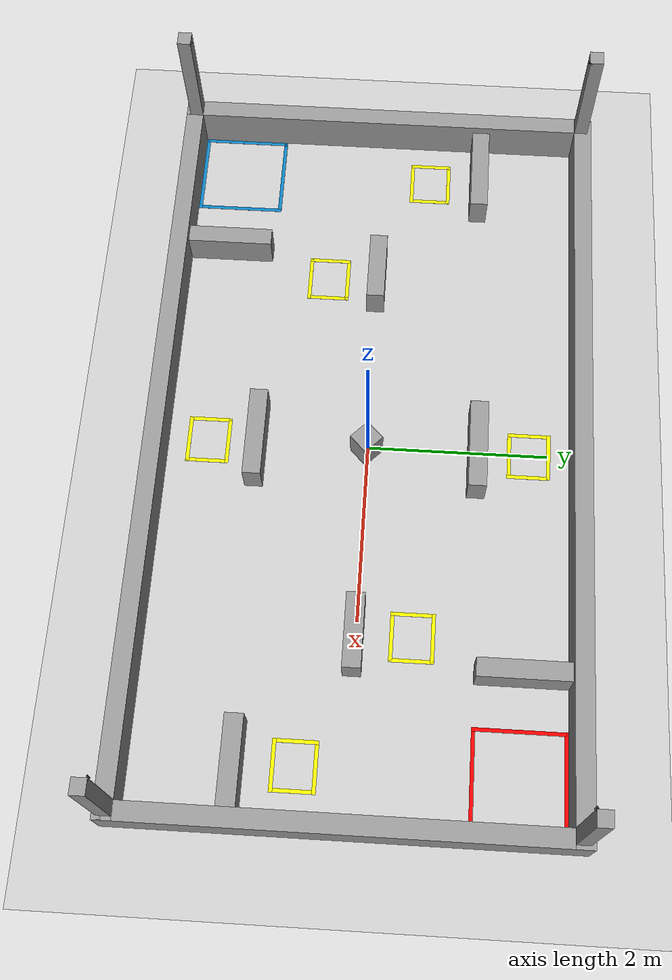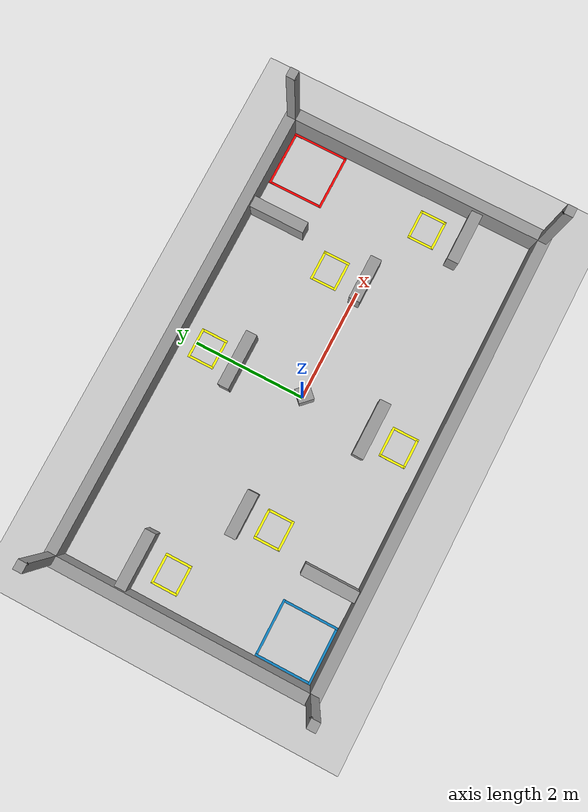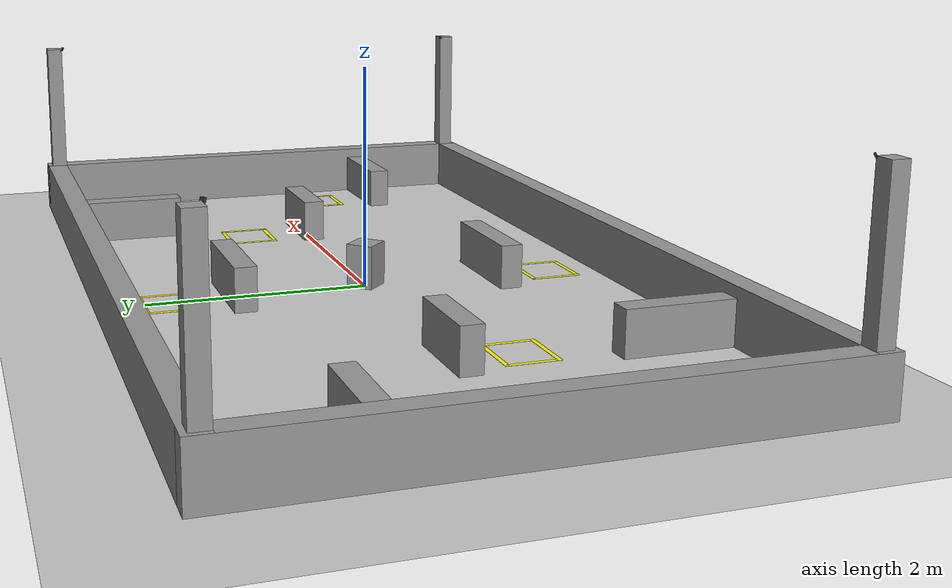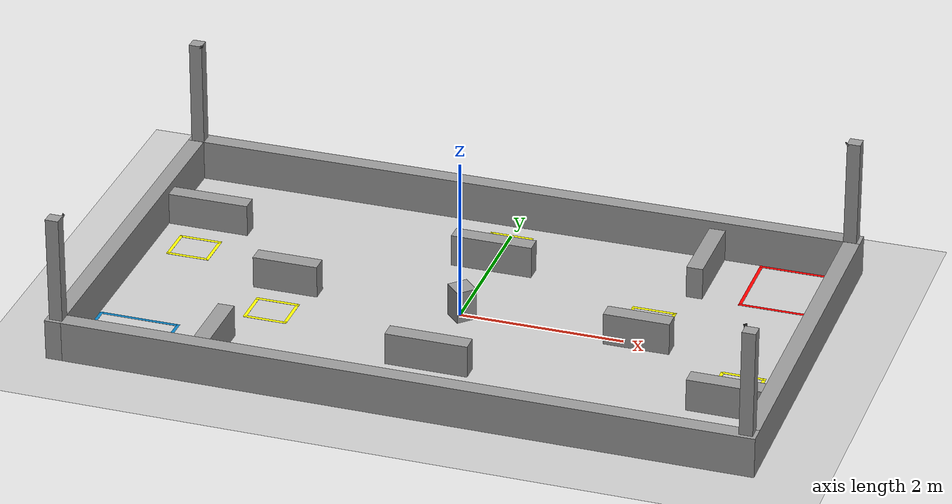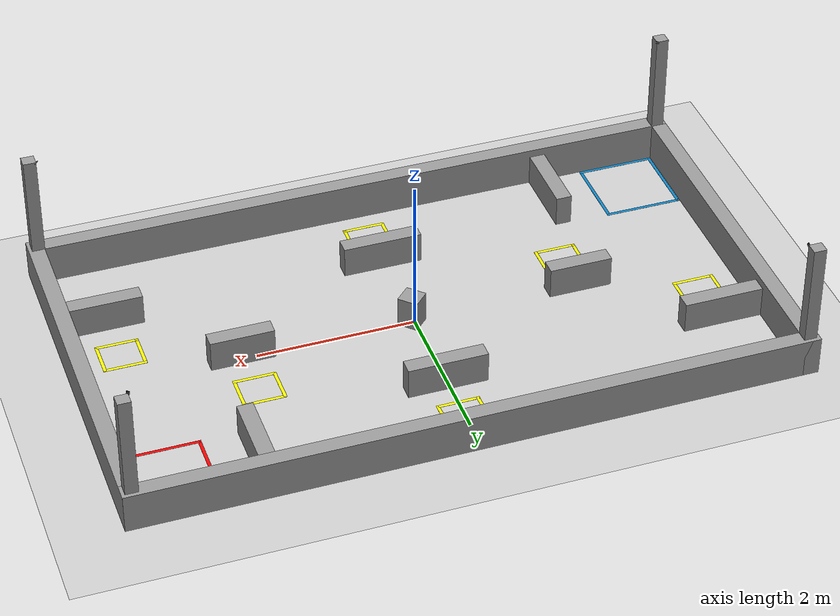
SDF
<sdf version="1.6">
 <world name="default">
  <light name="sun" type="directional">
   <pose>0 0 10 0 -0 0</pose>
   <diffuse>0.8 0.8 0.8 1</diffuse>
   <specular>0.1 0.1 0.1 1</specular>
   <attenuation>
    <range>1000</range>
    <constant>0.9</constant>
    <linear>0.01</linear>
    <quadratic>0.001</quadratic>
   </attenuation>
   <direction>-0.5 0.5 -1</direction>
  </light>
  <model name="ground_plane">
   <static>1</static>
   <link name="link">
    <collision name="collision">
     <geometry><plane><normal>0 0 1</normal><size>100 100</size></plane></geometry>
     <surface><friction><ode><mu>100</mu><mu2>50</mu2></ode></friction></surface>
    </collision>
    <visual name="visual">
     <cast_shadows>0</cast_shadows>
     <geometry><plane><normal>0 0 1</normal><size>100 100</size></plane></geometry>
     <material>
      <script><uri>file://media/materials/scripts/gazebo.material</uri><name>Gazebo/GreyTransparent</name></script>
     </material>
    </visual>
   </link>
  </model>
  <gravity>0 0 -9.8</gravity>
  <magnetic_field>6e-06 2.3e-05 -4.2e-05</magnetic_field>
  <atmosphere type="adiabatic"/>
  <physics name="default_physics" default="0" type="ode">
   <max_step_size>0.001</max_step_size>
   <real_time_factor>1</real_time_factor>
   <real_time_update_rate>1000</real_time_update_rate>
  </physics>
  <scene><ambient>0.4 0.4 0.4 1</ambient><background>0.7 0.7 0.7 1</background><shadows>1</shadows></scene>
  <spherical_coordinates>
   <surface_model>EARTH_WGS84</surface_model>
   <latitude_deg>0</latitude_deg>
   <longitude_deg>0</longitude_deg>
   <elevation>0</elevation>
   <heading_deg>0</heading_deg>
  </spherical_coordinates>
  <model name="wall">
   <link name="Wall_100">
    <collision name="Wall_100_Collision">
     <geometry><box><size>0.259899 0.25 0.4</size></box></geometry>
     <pose>0 0 0.2 0 -0 0</pose>
    </collision>
    <visual name="Wall_100_Visual">
     <pose>0 0 0.2 0 -0 0</pose>
     <geometry><box><size>0.259899 0.25 0.4</size></box></geometry>
     <material>
      <script><uri>file://media/materials/scripts/gazebo.material</uri><name>Gazebo/Grey</name></script>
      <ambient>1 1 1 1</ambient>
     </material>
    </visual>
    <pose>0.030183 -0.017942 0 0 0 -0.785398</pose>
   </link>
   <link name="Wall_45">
    <collision name="Wall_45_Collision">
     <geometry><box><size>8.485 0.2 0.5</size></box></geometry>
     <pose>0 0 0.25 0 -0 0</pose>
    </collision>
    <visual name="Wall_45_Visual">
     <pose>0 0 0.25 0 -0 0</pose>
     <geometry><box><size>8.485 0.2 0.5</size></box></geometry>
     <material>
      <script><uri>file://media/materials/scripts/gazebo.material</uri><name>Gazebo/Grey</name></script>
      <ambient>1 1 1 1</ambient>
     </material>
    </visual>
    <pose>0 2.3425 0 0 -0 1.5e-05</pose>
   </link>
   <link name="Wall_54">
    <collision name="Wall_54_Collision">
     <geometry><box><size>4.885 0.2 0.5</size></box></geometry>
     <pose>0 0 0.25 0 -0 0</pose>
    </collision>
    <visual name="Wall_54_Visual">
     <pose>0 0 0.25 0 -0 0</pose>
     <geometry><box><size>4.885 0.2 0.5</size></box></geometry>
     <material>
      <script><uri>file://media/materials/scripts/gazebo.material</uri><name>Gazebo/Grey</name></script>
      <ambient>1 1 1 1</ambient>
     </material>
    </visual>
    <pose>4.14272 6.1e-05 0 0 0 -1.5708</pose>
   </link>
   <link name="Wall_56">
    <collision name="Wall_56_Collision">
     <geometry><box><size>8.485 0.2 0.5</size></box></geometry>
     <pose>0 0 0.25 0 -0 0</pose>
    </collision>
    <visual name="Wall_56_Visual">
     <pose>0 0 0.25 0 -0 0</pose>
     <geometry><box><size>8.485 0.2 0.5</size></box></geometry>
     <material>
      <script><uri>file://media/materials/scripts/gazebo.material</uri><name>Gazebo/Grey</name></script>
      <ambient>1 1 1 1</ambient>
     </material>
    </visual>
    <pose>0 -2.3425 0 0 0 -3.14158</pose>
   </link>
   <link name="Wall_58">
    <collision name="Wall_58_Collision">
     <geometry><box><size>4.885 0.2 0.5</size></box></geometry>
     <pose>0 0 0.25 0 -0 0</pose>
    </collision>
    <visual name="Wall_58_Visual">
     <pose>0 0 0.25 0 -0 0</pose>
     <geometry><box><size>4.885 0.2 0.5</size></box></geometry>
     <material>
      <script><uri>file://media/materials/scripts/gazebo.material</uri><name>Gazebo/Grey</name></script>
      <ambient>1 1 1 1</ambient>
     </material>
    </visual>
    <pose>-4.14272 -6.1e-05 0 0 0 -1.5708</pose>
   </link>
   <link name="Wall_74">
    <collision name="Wall_74_Collision">
     <geometry><box><size>1.05 0.2 0.4</size></box></geometry>
     <pose>0 0 0.2 0 -0 0</pose>
    </collision>
    <visual name="Wall_74_Visual">
     <pose>0 0 0.2 0 -0 0</pose>
     <geometry><box><size>1.05 0.2 0.4</size></box></geometry>
     <material>
      <script><uri>file://media/materials/scripts/gazebo.material</uri><name>Gazebo/Grey</name></script>
      <ambient>1 1 1 1</ambient>
     </material>
    </visual>
    <pose>-3.56172 1.13044 0 0 -0 0</pose>
   </link>
   <link name="Wall_76">
    <collision name="Wall_76_Collision">
     <geometry><box><size>1 0.2 0.4</size></box></geometry>
     <pose>0 0 0.2 0 -0 0</pose>
    </collision>
    <visual name="Wall_76_Visual">
     <pose>0 0 0.2 0 -0 0</pose>
     <geometry><box><size>1 0.2 0.4</size></box></geometry>
     <material>
      <script><uri>file://media/materials/scripts/gazebo.material</uri><name>Gazebo/Grey</name></script>
      <ambient>1 1 1 1</ambient>
     </material>
    </visual>
    <pose>-2.44066 -1.77962 0 0 -0 1.5708</pose>
   </link>
   <link name="Wall_78">
    <collision name="Wall_78_Collision">
     <geometry><box><size>1 0.2 0.4</size></box></geometry>
     <pose>0 0 0.2 0 -0 0</pose>
    </collision>
    <visual name="Wall_78_Visual">
     <pose>0 0 0.2 0 -0 0</pose>
     <geometry><box><size>1 0.2 0.4</size></box></geometry>
     <material>
      <script><uri>file://media/materials/scripts/gazebo.material</uri><name>Gazebo/Grey</name></script>
      <ambient>1 1 1 1</ambient>
     </material>
    </visual>
    <pose>3.61328 -1.16656 0 0 -0 3.14159</pose>
   </link>
   <link name="Wall_80">
    <collision name="Wall_80_Collision">
     <geometry><box><size>1 0.2 0.4</size></box></geometry>
     <pose>0 0 0.2 0 -0 0</pose>
    </collision>
    <visual name="Wall_80_Visual">
     <pose>0 0 0.2 0 -0 0</pose>
     <geometry><box><size>1 0.2 0.4</size></box></geometry>
     <material>
      <script><uri>file://media/materials/scripts/gazebo.material</uri><name>Gazebo/Grey</name></script>
      <ambient>1 1 1 1</ambient>
     </material>
    </visual>
    <pose>2.49928 1.74844 0 0 -0 1.5708</pose>
   </link>
   <link name="Wall_82">
    <collision name="Wall_82_Collision">
     <geometry><box><size>1 0.2 0.4</size></box></geometry>
     <pose>0 0 0.2 0 -0 0</pose>
    </collision>
    <visual name="Wall_82_Visual">
     <pose>0 0 0.2 0 -0 0</pose>
     <geometry><box><size>1 0.2 0.4</size></box></geometry>
     <material>
      <script><uri>file://media/materials/scripts/gazebo.material</uri><name>Gazebo/Grey</name></script>
      <ambient>1 1 1 1</ambient>
     </material>
    </visual>
    <pose>0.026281 1.20944 0 0 -0 0</pose>
   </link>
   <link name="Wall_84">
    <collision name="Wall_84_Collision">
     <geometry><box><size>1 0.2 0.4</size></box></geometry>
     <pose>0 0 0.2 0 -0 0</pose>
    </collision>
    <visual name="Wall_84_Visual">
     <pose>0 0 0.2 0 -0 0</pose>
     <geometry><box><size>1 0.2 0.4</size></box></geometry>
     <material>
      <script><uri>file://media/materials/scripts/gazebo.material</uri><name>Gazebo/Grey</name></script>
      <ambient>1 1 1 1</ambient>
     </material>
    </visual>
    <pose>0.026281 -1.24256 0 0 -0 0</pose>
   </link>
   <link name="Wall_86">
    <collision name="Wall_86_Collision">
     <geometry><box><size>0.8 0.2 0.4</size></box></geometry>
     <pose>0 0 0.2 0 -0 0</pose>
    </collision>
    <visual name="Wall_86_Visual">
     <pose>0 0 0.2 0 -0 0</pose>
     <geometry><box><size>0.8 0.2 0.4</size></box></geometry>
     <material>
      <script><uri>file://media/materials/scripts/gazebo.material</uri><name>Gazebo/Grey</name></script>
      <ambient>1 1 1 1</ambient>
     </material>
    </visual>
    <pose>-2.13672 -0.023561 0 0 -0 0</pose>
   </link>
   <link name="Wall_88">
    <collision name="Wall_88_Collision">
     <geometry><box><size>0.8 0.2 0.4</size></box></geometry>
     <pose>0 0 0.2 0 -0 0</pose>
    </collision>
    <visual name="Wall_88_Visual">
     <pose>0 0 0.2 0 -0 0</pose>
     <geometry><box><size>0.8 0.2 0.4</size></box></geometry>
     <material>
      <script><uri>file://media/materials/scripts/gazebo.material</uri><name>Gazebo/Grey</name></script>
      <ambient>1 1 1 1</ambient>
     </material>
    </visual>
    <pose>2.18728 -0.023561 0 0 -0 0</pose>
   </link>
   <static>1</static>
  </model>
  <model name="red0">
   <pose>3.54 1.74 0 0 -0 0</pose>
   <link name="Wall_10">
    <collision name="Wall_10_Collision">
     <geometry><box><size>1 0.04 0.001</size></box></geometry>
     <pose>0 0 0.0005 0 -0 0</pose>
    </collision>
    <visual name="Wall_10_Visual">
     <pose>0 0 0.0005 0 -0 0</pose>
     <geometry><box><size>1 0.04 0.001</size></box></geometry>
     <material>
      <script><uri>file://media/materials/scripts/gazebo.material</uri><name>Gazebo/Grey</name></script>
      <ambient>1 0 0 1</ambient>
     </material>
    </visual>
    <pose>0.48 0 0 0 0 -1.5708</pose>
   </link>
   <link name="Wall_12">
    <collision name="Wall_12_Collision">
     <geometry><box><size>1 0.04 0.001</size></box></geometry>
     <pose>0 0 0.0005 0 -0 0</pose>
    </collision>
    <visual name="Wall_12_Visual">
     <pose>0 0 0.0005 0 -0 0</pose>
     <geometry><box><size>1 0.04 0.001</size></box></geometry>
     <material>
      <script><uri>file://media/materials/scripts/gazebo.material</uri><name>Gazebo/Grey</name></script>
      <ambient>1 0 0 1</ambient>
     </material>
    </visual>
    <pose>0 -0.48 0 0 -0 0</pose>
   </link>
   <link name="Wall_6">
    <collision name="Wall_6_Collision">
     <geometry><box><size>1 0.04 0.001</size></box></geometry>
     <pose>0 0 0.0005 0 -0 0</pose>
    </collision>
    <visual name="Wall_6_Visual">
     <pose>0 0 0.0005 0 -0 0</pose>
     <geometry><box><size>1 0.04 0.001</size></box></geometry>
     <material>
      <script><uri>file://media/materials/scripts/gazebo.material</uri><name>Gazebo/Grey</name></script>
      <ambient>1 0 0 1</ambient>
     </material>
    </visual>
    <pose>-0.48 0 0 0 0 -1.5708</pose>
   </link>
   <link name="Wall_8">
    <collision name="Wall_8_Collision">
     <geometry><box><size>1 0.04 0.001</size></box></geometry>
     <pose>0 0 0.0005 0 -0 0</pose>
    </collision>
    <visual name="Wall_8_Visual">
     <pose>0 0 0.0005 0 -0 0</pose>
     <geometry><box><size>1 0.04 0.001</size></box></geometry>
     <material>
      <script><uri>file://media/materials/scripts/gazebo.material</uri><name>Gazebo/Grey</name></script>
      <ambient>1 0 0 1</ambient>
     </material>
    </visual>
    <pose>0 0.48 0 0 -0 0</pose>
   </link>
   <static>1</static>
  </model>
  <model name="blue0">
   <pose>-3.54 -1.74 0 0 -0 0</pose>
   <link name="Wall_20">
    <collision name="Wall_20_Collision">
     <geometry><box><size>1 0.04 0.001</size></box></geometry>
     <pose>0 0 0.0005 0 -0 0</pose>
    </collision>
    <visual name="Wall_20_Visual">
     <pose>0 0 0.0005 0 -0 0</pose>
     <geometry><box><size>1 0.04 0.001</size></box></geometry>
     <material>
      <script><uri>file://media/materials/scripts/gazebo.material</uri><name>Gazebo/Grey</name></script>
      <ambient>0.0470588 0.509804 0.756863 1</ambient>
     </material>
    </visual>
    <pose>0 0.48 0 0 -0 0</pose>
   </link>
   <link name="Wall_22">
    <collision name="Wall_22_Collision">
     <geometry><box><size>1 0.04 0.001</size></box></geometry>
     <pose>0 0 0.0005 0 -0 0</pose>
    </collision>
    <visual name="Wall_22_Visual">
     <pose>0 0 0.0005 0 -0 0</pose>
     <geometry><box><size>1 0.04 0.001</size></box></geometry>
     <material>
      <script><uri>file://media/materials/scripts/gazebo.material</uri><name>Gazebo/Grey</name></script>
      <ambient>0.0470588 0.509804 0.756863 1</ambient>
     </material>
    </visual>
    <pose>-0.48 0 0 0 0 -1.5708</pose>
   </link>
   <link name="Wall_24">
    <collision name="Wall_24_Collision">
     <geometry><box><size>1 0.04 0.001</size></box></geometry>
     <pose>0 0 0.0005 0 -0 0</pose>
    </collision>
    <visual name="Wall_24_Visual">
     <pose>0 0 0.0005 0 -0 0</pose>
     <geometry><box><size>1 0.04 0.001</size></box></geometry>
     <material>
      <script><uri>file://media/materials/scripts/gazebo.material</uri><name>Gazebo/Grey</name></script>
      <ambient>0.0470588 0.509804 0.756863 1</ambient>
     </material>
    </visual>
    <pose>0.48 0 0 0 0 -1.5708</pose>
   </link>
   <link name="Wall_26">
    <collision name="Wall_26_Collision">
     <geometry><box><size>1 0.04 0.001</size></box></geometry>
     <pose>0 0 0.0005 0 -0 0</pose>
    </collision>
    <visual name="Wall_26_Visual">
     <pose>0 0 0.0005 0 -0 0</pose>
     <geometry><box><size>1 0.04 0.001</size></box></geometry>
     <material>
      <script><uri>file://media/materials/scripts/gazebo.material</uri><name>Gazebo/Grey</name></script>
      <ambient>0.0470588 0.509804 0.756863 1</ambient>
     </material>
    </visual>
    <pose>0 -0.48 0 0 -0 0</pose>
   </link>
   <static>1</static>
  </model>
  <model name="bonus_0">
   <pose>0 1.795 0 0 -0 0</pose>
   <link name="Wall_28">
    <collision name="Wall_28_Collision">
     <geometry><box><size>0.54 0.04 0.001</size></box></geometry>
     <pose>0 0 0.0005 0 -0 0</pose>
    </collision>
    <visual name="Wall_28_Visual">
     <pose>0 0 0.0005 0 -0 0</pose>
     <geometry><box><size>0.54 0.04 0.001</size></box></geometry>
     <material>
      <script><uri>file://media/materials/scripts/gazebo.material</uri><name>Gazebo/Grey</name></script>
      <ambient>1 1 0 1</ambient>
     </material>
    </visual>
    <pose>0 0.22 0 0 -0 0</pose>
   </link>
   <link name="Wall_30">
    <collision name="Wall_30_Collision">
     <geometry><box><size>0.48 0.04 0.001</size></box></geometry>
     <pose>0 0 0.0005 0 -0 0</pose>
    </collision>
    <visual name="Wall_30_Visual">
     <pose>0 0 0.0005 0 -0 0</pose>
     <geometry><box><size>0.48 0.04 0.001</size></box></geometry>
     <material>
      <script><uri>file://media/materials/scripts/gazebo.material</uri><name>Gazebo/Grey</name></script>
      <ambient>1 1 0 1</ambient>
     </material>
    </visual>
    <pose>-0.25 0 0 0 0 -1.5708</pose>
   </link>
   <link name="Wall_32">
    <collision name="Wall_32_Collision">
     <geometry><box><size>0.48 0.04 0.001</size></box></geometry>
     <pose>0 0 0.0005 0 -0 0</pose>
    </collision>
    <visual name="Wall_32_Visual">
     <pose>0 0 0.0005 0 -0 0</pose>
     <geometry><box><size>0.48 0.04 0.001</size></box></geometry>
     <material>
      <script><uri>file://media/materials/scripts/gazebo.material</uri><name>Gazebo/Grey</name></script>
      <ambient>1 1 0 1</ambient>
     </material>
    </visual>
    <pose>0.25 0 0 0 0 -1.5708</pose>
   </link>
   <link name="Wall_34">
    <collision name="Wall_34_Collision">
     <geometry><box><size>0.54 0.04 0.001</size></box></geometry>
     <pose>0 0 0.0005 0 -0 0</pose>
    </collision>
    <visual name="Wall_34_Visual">
     <pose>0 0 0.0005 0 -0 0</pose>
     <geometry><box><size>0.54 0.04 0.001</size></box></geometry>
     <material>
      <script><uri>file://media/materials/scripts/gazebo.material</uri><name>Gazebo/Grey</name></script>
      <ambient>1 1 0 1</ambient>
     </material>
    </visual>
    <pose>0 -0.22 0 0 -0 0</pose>
   </link>
   <static>1</static>
  </model>
  <model name="bonus_3">
   <pose>0 -1.795 0 0 -0 0</pose>
   <link name="Wall_28">
    <collision name="Wall_28_Collision">
     <geometry><box><size>0.54 0.04 0.001</size></box></geometry>
     <pose>0 0 0.0005 0 -0 0</pose>
    </collision>
    <visual name="Wall_28_Visual">
     <pose>0 0 0.0005 0 -0 0</pose>
     <geometry><box><size>0.54 0.04 0.001</size></box></geometry>
     <material>
      <script><uri>file://media/materials/scripts/gazebo.material</uri><name>Gazebo/Grey</name></script>
      <ambient>1 1 0 1</ambient>
     </material>
    </visual>
    <pose>0 0.22 0 0 -0 0</pose>
   </link>
   <link name="Wall_30">
    <collision name="Wall_30_Collision">
     <geometry><box><size>0.48 0.04 0.001</size></box></geometry>
     <pose>0 0 0.0005 0 -0 0</pose>
    </collision>
    <visual name="Wall_30_Visual">
     <pose>0 0 0.0005 0 -0 0</pose>
     <geometry><box><size>0.48 0.04 0.001</size></box></geometry>
     <material>
      <script><uri>file://media/materials/scripts/gazebo.material</uri><name>Gazebo/Grey</name></script>
      <ambient>1 1 0 1</ambient>
     </material>
    </visual>
    <pose>-0.25 0 0 0 0 -1.5708</pose>
   </link>
   <link name="Wall_32">
    <collision name="Wall_32_Collision">
     <geometry><box><size>0.48 0.04 0.001</size></box></geometry>
     <pose>0 0 0.0005 0 -0 0</pose>
    </collision>
    <visual name="Wall_32_Visual">
     <pose>0 0 0.0005 0 -0 0</pose>
     <geometry><box><size>0.48 0.04 0.001</size></box></geometry>
     <material>
      <script><uri>file://media/materials/scripts/gazebo.material</uri><name>Gazebo/Grey</name></script>
      <ambient>1 1 0 1</ambient>
     </material>
    </visual>
    <pose>0.25 0 0 0 0 -1.5708</pose>
   </link>
   <link name="Wall_34">
    <collision name="Wall_34_Collision">
     <geometry><box><size>0.54 0.04 0.001</size></box></geometry>
     <pose>0 0 0.0005 0 -0 0</pose>
    </collision>
    <visual name="Wall_34_Visual">
     <pose>0 0 0.0005 0 -0 0</pose>
     <geometry><box><size>0.54 0.04 0.001</size></box></geometry>
     <material>
      <script><uri>file://media/materials/scripts/gazebo.material</uri><name>Gazebo/Grey</name></script>
      <ambient>1 1 0 1</ambient>
     </material>
    </visual>
    <pose>0 -0.22 0 0 -0 0</pose>
   </link>
   <static>1</static>
  </model>
  <model name="bonus_1">
   <pose>2.14 0.59 0 0 -0 0</pose>
   <link name="Wall_28">
    <collision name="Wall_28_Collision">
     <geometry><box><size>0.54 0.04 0.001</size></box></geometry>
     <pose>0 0 0.0005 0 -0 0</pose>
    </collision>
    <visual name="Wall_28_Visual">
     <pose>0 0 0.0005 0 -0 0</pose>
     <geometry><box><size>0.54 0.04 0.001</size></box></geometry>
     <material>
      <script><uri>file://media/materials/scripts/gazebo.material</uri><name>Gazebo/Grey</name></script>
      <ambient>1 1 0 1</ambient>
     </material>
    </visual>
    <pose>0 0.22 0 0 -0 0</pose>
   </link>
   <link name="Wall_30">
    <collision name="Wall_30_Collision">
     <geometry><box><size>0.48 0.04 0.001</size></box></geometry>
     <pose>0 0 0.0005 0 -0 0</pose>
    </collision>
    <visual name="Wall_30_Visual">
     <pose>0 0 0.0005 0 -0 0</pose>
     <geometry><box><size>0.48 0.04 0.001</size></box></geometry>
     <material>
      <script><uri>file://media/materials/scripts/gazebo.material</uri><name>Gazebo/Grey</name></script>
      <ambient>1 1 0 1</ambient>
     </material>
    </visual>
    <pose>-0.25 0 0 0 0 -1.5708</pose>
   </link>
   <link name="Wall_32">
    <collision name="Wall_32_Collision">
     <geometry><box><size>0.48 0.04 0.001</size></box></geometry>
     <pose>0 0 0.0005 0 -0 0</pose>
    </collision>
    <visual name="Wall_32_Visual">
     <pose>0 0 0.0005 0 -0 0</pose>
     <geometry><box><size>0.48 0.04 0.001</size></box></geometry>
     <material>
      <script><uri>file://media/materials/scripts/gazebo.material</uri><name>Gazebo/Grey</name></script>
      <ambient>1 1 0 1</ambient>
     </material>
    </visual>
    <pose>0.25 0 0 0 0 -1.5708</pose>
   </link>
   <link name="Wall_34">
    <collision name="Wall_34_Collision">
     <geometry><box><size>0.54 0.04 0.001</size></box></geometry>
     <pose>0 0 0.0005 0 -0 0</pose>
    </collision>
    <visual name="Wall_34_Visual">
     <pose>0 0 0.0005 0 -0 0</pose>
     <geometry><box><size>0.54 0.04 0.001</size></box></geometry>
     <material>
      <script><uri>file://media/materials/scripts/gazebo.material</uri><name>Gazebo/Grey</name></script>
      <ambient>1 1 0 1</ambient>
     </material>
    </visual>
    <pose>0 -0.22 0 0 -0 0</pose>
   </link>
   <static>1</static>
  </model>
  <model name="bonus_4">
   <pose>-2.14 -0.59 0 0 -0 0</pose>
   <link name="Wall_28">
    <collision name="Wall_28_Collision">
     <geometry><box><size>0.54 0.04 0.001</size></box></geometry>
     <pose>0 0 0.0005 0 -0 0</pose>
    </collision>
    <visual name="Wall_28_Visual">
     <pose>0 0 0.0005 0 -0 0</pose>
     <geometry><box><size>0.54 0.04 0.001</size></box></geometry>
     <material>
      <script><uri>file://media/materials/scripts/gazebo.material</uri><name>Gazebo/Grey</name></script>
      <ambient>1 1 0 1</ambient>
     </material>
    </visual>
    <pose>0 0.22 0 0 -0 0</pose>
   </link>
   <link name="Wall_30">
    <collision name="Wall_30_Collision">
     <geometry><box><size>0.48 0.04 0.001</size></box></geometry>
     <pose>0 0 0.0005 0 -0 0</pose>
    </collision>
    <visual name="Wall_30_Visual">
     <pose>0 0 0.0005 0 -0 0</pose>
     <geometry><box><size>0.48 0.04 0.001</size></box></geometry>
     <material>
      <script><uri>file://media/materials/scripts/gazebo.material</uri><name>Gazebo/Grey</name></script>
      <ambient>1 1 0 1</ambient>
     </material>
    </visual>
    <pose>-0.25 0 0 0 0 -1.5708</pose>
   </link>
   <link name="Wall_32">
    <collision name="Wall_32_Collision">
     <geometry><box><size>0.48 0.04 0.001</size></box></geometry>
     <pose>0 0 0.0005 0 -0 0</pose>
    </collision>
    <visual name="Wall_32_Visual">
     <pose>0 0 0.0005 0 -0 0</pose>
     <geometry><box><size>0.48 0.04 0.001</size></box></geometry>
     <material>
      <script><uri>file://media/materials/scripts/gazebo.material</uri><name>Gazebo/Grey</name></script>
      <ambient>1 1 0 1</ambient>
     </material>
    </visual>
    <pose>0.25 0 0 0 0 -1.5708</pose>
   </link>
   <link name="Wall_34">
    <collision name="Wall_34_Collision">
     <geometry><box><size>0.54 0.04 0.001</size></box></geometry>
     <pose>0 0 0.0005 0 -0 0</pose>
    </collision>
    <visual name="Wall_34_Visual">
     <pose>0 0 0.0005 0 -0 0</pose>
     <geometry><box><size>0.54 0.04 0.001</size></box></geometry>
     <material>
      <script><uri>file://media/materials/scripts/gazebo.material</uri><name>Gazebo/Grey</name></script>
      <ambient>1 1 0 1</ambient>
     </material>
    </visual>
    <pose>0 -0.22 0 0 -0 0</pose>
   </link>
   <static>1</static>
  </model>
  <model name="bonus_5">
   <pose>-3.54 0.55 0 0 -0 0</pose>
   <link name="Wall_28">
    <collision name="Wall_28_Collision">
     <geometry><box><size>0.54 0.04 0.001</size></box></geometry>
     <pose>0 0 0.0005 0 -0 0</pose>
    </collision>
    <visual name="Wall_28_Visual">
     <pose>0 0 0.0005 0 -0 0</pose>
     <geometry><box><size>0.54 0.04 0.001</size></box></geometry>
     <material>
      <script><uri>file://media/materials/scripts/gazebo.material</uri><name>Gazebo/Grey</name></script>
      <ambient>1 1 0 1</ambient>
     </material>
    </visual>
    <pose>0 0.22 0 0 -0 0</pose>
   </link>
   <link name="Wall_30">
    <collision name="Wall_30_Collision">
     <geometry><box><size>0.48 0.04 0.001</size></box></geometry>
     <pose>0 0 0.0005 0 -0 0</pose>
    </collision>
    <visual name="Wall_30_Visual">
     <pose>0 0 0.0005 0 -0 0</pose>
     <geometry><box><size>0.48 0.04 0.001</size></box></geometry>
     <material>
      <script><uri>file://media/materials/scripts/gazebo.material</uri><name>Gazebo/Grey</name></script>
      <ambient>1 1 0 1</ambient>
     </material>
    </visual>
    <pose>-0.25 0 0 0 0 -1.5708</pose>
   </link>
   <link name="Wall_32">
    <collision name="Wall_32_Collision">
     <geometry><box><size>0.48 0.04 0.001</size></box></geometry>
     <pose>0 0 0.0005 0 -0 0</pose>
    </collision>
    <visual name="Wall_32_Visual">
     <pose>0 0 0.0005 0 -0 0</pose>
     <geometry><box><size>0.48 0.04 0.001</size></box></geometry>
     <material>
      <script><uri>file://media/materials/scripts/gazebo.material</uri><name>Gazebo/Grey</name></script>
      <ambient>1 1 0 1</ambient>
     </material>
    </visual>
    <pose>0.25 0 0 0 0 -1.5708</pose>
   </link>
   <link name="Wall_34">
    <collision name="Wall_34_Collision">
     <geometry><box><size>0.54 0.04 0.001</size></box></geometry>
     <pose>0 0 0.0005 0 -0 0</pose>
    </collision>
    <visual name="Wall_34_Visual">
     <pose>0 0 0.0005 0 -0 0</pose>
     <geometry><box><size>0.54 0.04 0.001</size></box></geometry>
     <material>
      <script><uri>file://media/materials/scripts/gazebo.material</uri><name>Gazebo/Grey</name></script>
      <ambient>1 1 0 1</ambient>
     </material>
    </visual>
    <pose>0 -0.22 0 0 -0 0</pose>
   </link>
   <static>1</static>
  </model>
  <model name="bonus_2">
   <pose>3.54 -0.55 0 0 -0 0</pose>
   <link name="Wall_28">
    <collision name="Wall_28_Collision">
     <geometry><box><size>0.54 0.04 0.001</size></box></geometry>
     <pose>0 0 0.0005 0 -0 0</pose>
    </collision>
    <visual name="Wall_28_Visual">
     <pose>0 0 0.0005 0 -0 0</pose>
     <geometry><box><size>0.54 0.04 0.001</size></box></geometry>
     <material>
      <script><uri>file://media/materials/scripts/gazebo.material</uri><name>Gazebo/Grey</name></script>
      <ambient>1 1 0 1</ambient>
     </material>
    </visual>
    <pose>0 0.22 0 0 -0 0</pose>
   </link>
   <link name="Wall_30">
    <collision name="Wall_30_Collision">
     <geometry><box><size>0.48 0.04 0.001</size></box></geometry>
     <pose>0 0 0.0005 0 -0 0</pose>
    </collision>
    <visual name="Wall_30_Visual">
     <pose>0 0 0.0005 0 -0 0</pose>
     <geometry><box><size>0.48 0.04 0.001</size></box></geometry>
     <material>
      <script><uri>file://media/materials/scripts/gazebo.material</uri><name>Gazebo/Grey</name></script>
      <ambient>1 1 0 1</ambient>
     </material>
    </visual>
    <pose>-0.25 0 0 0 0 -1.5708</pose>
   </link>
   <link name="Wall_32">
    <collision name="Wall_32_Collision">
     <geometry><box><size>0.48 0.04 0.001</size></box></geometry>
     <pose>0 0 0.0005 0 -0 0</pose>
    </collision>
    <visual name="Wall_32_Visual">
     <pose>0 0 0.0005 0 -0 0</pose>
     <geometry><box><size>0.48 0.04 0.001</size></box></geometry>
     <material>
      <script><uri>file://media/materials/scripts/gazebo.material</uri><name>Gazebo/Grey</name></script>
      <ambient>1 1 0 1</ambient>
     </material>
    </visual>
    <pose>0.25 0 0 0 0 -1.5708</pose>
   </link>
   <link name="Wall_34">
    <collision name="Wall_34_Collision">
     <geometry><box><size>0.54 0.04 0.001</size></box></geometry>
     <pose>0 0 0.0005 0 -0 0</pose>
    </collision>
    <visual name="Wall_34_Visual">
     <pose>0 0 0.0005 0 -0 0</pose>
     <geometry><box><size>0.54 0.04 0.001</size></box></geometry>
     <material>
      <script><uri>file://media/materials/scripts/gazebo.material</uri><name>Gazebo/Grey</name></script>
      <ambient>1 1 0 1</ambient>
     </material>
    </visual>
    <pose>0 -0.22 0 0 -0 0</pose>
   </link>
   <static>1</static>
  </model>
  <model name="pole_0">
   <pose>4.12 2.32 0 0 -0 0</pose>
   <link name="Wall_0">
    <collision name="Wall_0_Collision">
     <geometry><box><size>0.16 0.15 1.808</size></box></geometry>
     <pose>0 0 0.904 0 -0 0</pose>
    </collision>
    <visual name="Wall_0_Visual">
     <pose>0 0 0.904 0 -0 0</pose>
     <geometry><box><size>0.16 0.15 1.808</size></box></geometry>
     <material>
      <script><uri>file://media/materials/scripts/gazebo.material</uri><name>Gazebo/Grey</name></script>
      <ambient>1 1 1 1</ambient>
     </material>
    </visual>
   </link>
   <static>1</static>
  </model>
  <model name="outpost-camera_0">
   <link name="camera_link">
    <inertial>
     <mass>0.1</mass>
     <inertia><ixx>0.01</ixx><ixy>0</ixy><ixz>0</ixz><iyy>0.01</iyy><iyz>0</iyz><izz>0.01</izz></inertia>
    </inertial>
    <sensor name="camera_node" type="camera">
     <update_rate>30</update_rate>
     <camera name="outpost-camera_0">
      <horizontal_fov>1.39626</horizontal_fov>
      <image><width>1920</width><height>1920</height><format>R8G8B8</format></image>
      <clip><near>0.02</near><far>300</far></clip>
      <noise><type>gaussian</type><mean>0</mean><stddev>0.007</stddev></noise>
     </camera>
     <plugin name="gazebo_camera" filename="libgazebo_ros_camera.so">
      <robotNamespace>/outpost_camera</robotNamespace>
      <cameraName>outpost_camera0</cameraName>
      <imageTopicName>image_raw</imageTopicName>
     </plugin>
    </sensor>
    <visual name="camera_link_visual">
     <geometry><box><size>0.01 0.04 0.04</size></box></geometry>
     <material>
      <script><name>Gazebo/Black</name><uri>file://media/materials/scripts/gazebo.material</uri></script>
      <ambient>0 0 0 1</ambient>
      <diffuse>0 0 0 1</diffuse>
      <specular>0.1 0.1 0.1 1</specular>
      <emissive>0 0 0 1</emissive>
     </material>
    </visual>
    <collision name="camera_link_collision">
     <geometry><box><size>0.01 0.04 0.04</size></box></geometry>
     <surface>
      <friction>
       <ode><mu>1</mu><mu2>1</mu2><fdir1>0 0 0</fdir1><slip1>0</slip1><slip2>0</slip2></ode>
       <torsional>
        <coefficient>1</coefficient>
        <patch_radius>0</patch_radius>
        <surface_radius>0</surface_radius>
        <use_patch_radius>1</use_patch_radius>
        <ode><slip>0</slip></ode>
       </torsional>
      </friction>
      <bounce><restitution_coefficient>0</restitution_coefficient><threshold>1e+06</threshold></bounce>
      <contact>
       <collide_without_contact>0</collide_without_contact>
       <collide_without_contact_bitmask>1</collide_without_contact_bitmask>
       <collide_bitmask>1</collide_bitmask>
       <ode>
        <soft_cfm>0</soft_cfm>
        <soft_erp>0.2</soft_erp>
        <kp>1e+13</kp>
        <kd>1</kd>
        <max_vel>0.01</max_vel>
        <min_depth>0</min_depth>
       </ode>
       <bullet>
        <split_impulse>1</split_impulse>
        <split_impulse_penetration_threshold>-0.01</split_impulse_penetration_threshold>
        <soft_cfm>0</soft_cfm>
        <soft_erp>0.2</soft_erp>
        <kp>1e+13</kp>
        <kd>1</kd>
       </bullet>
      </contact>
     </surface>
    </collision>
   </link>
   <static>1</static>
   <pose>4.04 2.24 1.808 0 0.5 -2.355</pose>
  </model>
  <model name="pole_1">
   <pose>4.12 -2.32 0 0 -0 0</pose>
   <link name="Wall_0">
    <collision name="Wall_0_Collision">
     <geometry><box><size>0.16 0.15 1.808</size></box></geometry>
     <pose>0 0 0.904 0 -0 0</pose>
    </collision>
    <visual name="Wall_0_Visual">
     <pose>0 0 0.904 0 -0 0</pose>
     <geometry><box><size>0.16 0.15 1.808</size></box></geometry>
     <material>
      <script><uri>file://media/materials/scripts/gazebo.material</uri><name>Gazebo/Grey</name></script>
      <ambient>1 1 1 1</ambient>
     </material>
    </visual>
   </link>
   <static>1</static>
  </model>
  <model name="pole_3">
   <pose>-4.12 2.32 0 0 -0 0</pose>
   <link name="Wall_0">
    <collision name="Wall_0_Collision">
     <geometry><box><size>0.16 0.15 1.808</size></box></geometry>
     <pose>0 0 0.904 0 -0 0</pose>
    </collision>
    <visual name="Wall_0_Visual">
     <pose>0 0 0.904 0 -0 0</pose>
     <geometry><box><size>0.16 0.15 1.808</size></box></geometry>
     <material>
      <script><uri>file://media/materials/scripts/gazebo.material</uri><name>Gazebo/Grey</name></script>
      <ambient>1 1 1 1</ambient>
     </material>
    </visual>
   </link>
   <static>1</static>
  </model>
  <model name="pole_2">
   <pose>-4.12 -2.32 0 0 -0 0</pose>
   <link name="Wall_0">
    <collision name="Wall_0_Collision">
     <geometry><box><size>0.16 0.15 1.808</size></box></geometry>
     <pose>0 0 0.904 0 -0 0</pose>
    </collision>
    <visual name="Wall_0_Visual">
     <pose>0 0 0.904 0 -0 0</pose>
     <geometry><box><size>0.16 0.15 1.808</size></box></geometry>
     <material>
      <script><uri>file://media/materials/scripts/gazebo.material</uri><name>Gazebo/Grey</name></script>
      <ambient>1 1 1 1</ambient>
     </material>
    </visual>
   </link>
   <static>1</static>
  </model>
  <model name="outpost-camera_1">
   <link name="camera_link">
    <inertial>
     <mass>0.1</mass>
     <inertia><ixx>0.01</ixx><ixy>0</ixy><ixz>0</ixz><iyy>0.01</iyy><iyz>0</iyz><izz>0.01</izz></inertia>
    </inertial>
    <sensor name="camera_node" type="camera">
     <update_rate>30</update_rate>
     <camera name="outpost-camera_1">
      <horizontal_fov>1.39626</horizontal_fov>
      <image><width>1920</width><height>1920</height><format>R8G8B8</format></image>
      <clip><near>0.02</near><far>300</far></clip>
      <noise><type>gaussian</type><mean>0</mean><stddev>0.007</stddev></noise>
     </camera>
     <plugin name="gazebo_camera" filename="libgazebo_ros_camera.so">
      <robotNamespace>/outpost_camera</robotNamespace>
      <cameraName>outpost_camera1</cameraName>
      <imageTopicName>image_raw</imageTopicName>
     </plugin>
    </sensor>
    <visual name="camera_link_visual">
     <geometry><box><size>0.01 0.04 0.04</size></box></geometry>
     <material>
      <script><name>Gazebo/Black</name><uri>file://media/materials/scripts/gazebo.material</uri></script>
      <ambient>0 0 0 1</ambient>
      <diffuse>0 0 0 1</diffuse>
      <specular>0.1 0.1 0.1 1</specular>
      <emissive>0 0 0 1</emissive>
     </material>
    </visual>
    <collision name="camera_link_collision">
     <geometry><box><size>0.01 0.04 0.04</size></box></geometry>
     <surface>
      <friction>
       <ode><mu>1</mu><mu2>1</mu2><fdir1>0 0 0</fdir1><slip1>0</slip1><slip2>0</slip2></ode>
       <torsional>
        <coefficient>1</coefficient>
        <patch_radius>0</patch_radius>
        <surface_radius>0</surface_radius>
        <use_patch_radius>1</use_patch_radius>
        <ode><slip>0</slip></ode>
       </torsional>
      </friction>
      <bounce><restitution_coefficient>0</restitution_coefficient><threshold>1e+06</threshold></bounce>
      <contact>
       <collide_without_contact>0</collide_without_contact>
       <collide_without_contact_bitmask>1</collide_without_contact_bitmask>
       <collide_bitmask>1</collide_bitmask>
       <ode>
        <soft_cfm>0</soft_cfm>
        <soft_erp>0.2</soft_erp>
        <kp>1e+13</kp>
        <kd>1</kd>
        <max_vel>0.01</max_vel>
        <min_depth>0</min_depth>
       </ode>
       <bullet>
        <split_impulse>1</split_impulse>
        <split_impulse_penetration_threshold>-0.01</split_impulse_penetration_threshold>
        <soft_cfm>0</soft_cfm>
        <soft_erp>0.2</soft_erp>
        <kp>1e+13</kp>
        <kd>1</kd>
       </bullet>
      </contact>
     </surface>
    </collision>
   </link>
   <static>1</static>
   <pose>4.04 -2.24 1.808 -0 0.5 2.355</pose>
  </model>
  <model name="outpost-camera_2">
   <link name="camera_link">
    <inertial>
     <mass>0.1</mass>
     <inertia><ixx>0.01</ixx><ixy>0</ixy><ixz>0</ixz><iyy>0.01</iyy><iyz>0</iyz><izz>0.01</izz></inertia>
    </inertial>
    <sensor name="camera_node" type="camera">
     <update_rate>30</update_rate>
     <camera name="outpost-camera_2">
      <horizontal_fov>1.39626</horizontal_fov>
      <image><width>1920</width><height>1920</height><format>R8G8B8</format></image>
      <clip><near>0.02</near><far>300</far></clip>
      <noise><type>gaussian</type><mean>0</mean><stddev>0.007</stddev></noise>
     </camera>
     <plugin name="gazebo_camera" filename="libgazebo_ros_camera.so">
      <robotNamespace>/outpost_camera</robotNamespace>
      <cameraName>outpost_camera2</cameraName>
      <imageTopicName>image_raw</imageTopicName>
     </plugin>
    </sensor>
    <visual name="camera_link_visual">
     <geometry><box><size>0.01 0.04 0.04</size></box></geometry>
     <material>
      <script><name>Gazebo/Black</name><uri>file://media/materials/scripts/gazebo.material</uri></script>
      <ambient>0 0 0 1</ambient>
      <diffuse>0 0 0 1</diffuse>
      <specular>0.1 0.1 0.1 1</specular>
      <emissive>0 0 0 1</emissive>
     </material>
    </visual>
    <collision name="camera_link_collision">
     <geometry><box><size>0.01 0.04 0.04</size></box></geometry>
     <surface>
      <friction>
       <ode><mu>1</mu><mu2>1</mu2><fdir1>0 0 0</fdir1><slip1>0</slip1><slip2>0</slip2></ode>
       <torsional>
        <coefficient>1</coefficient>
        <patch_radius>0</patch_radius>
        <surface_radius>0</surface_radius>
        <use_patch_radius>1</use_patch_radius>
        <ode><slip>0</slip></ode>
       </torsional>
      </friction>
      <bounce><restitution_coefficient>0</restitution_coefficient><threshold>1e+06</threshold></bounce>
      <contact>
       <collide_without_contact>0</collide_without_contact>
       <collide_without_contact_bitmask>1</collide_without_contact_bitmask>
       <collide_bitmask>1</collide_bitmask>
       <ode>
        <soft_cfm>0</soft_cfm>
        <soft_erp>0.2</soft_erp>
        <kp>1e+13</kp>
        <kd>1</kd>
        <max_vel>0.01</max_vel>
        <min_depth>0</min_depth>
       </ode>
       <bullet>
        <split_impulse>1</split_impulse>
        <split_impulse_penetration_threshold>-0.01</split_impulse_penetration_threshold>
        <soft_cfm>0</soft_cfm>
        <soft_erp>0.2</soft_erp>
        <kp>1e+13</kp>
        <kd>1</kd>
       </bullet>
      </contact>
     </surface>
    </collision>
   </link>
   <static>1</static>
   <pose>-4.04 -2.24 1.808 0 0.5 0.785</pose>
  </model>
  <model name="outpost-camera_3">
   <link name="camera_link">
    <inertial>
     <mass>0.1</mass>
     <inertia><ixx>0.01</ixx><ixy>0</ixy><ixz>0</ixz><iyy>0.01</iyy><iyz>0</iyz><izz>0.01</izz></inertia>
    </inertial>
    <sensor name="camera_node" type="camera">
     <update_rate>30</update_rate>
     <camera name="camera-camera_3">
      <horizontal_fov>1.39626</horizontal_fov>
      <image><width>1920</width><height>1920</height><format>R8G8B8</format></image>
      <clip><near>0.02</near><far>300</far></clip>
      <noise><type>gaussian</type><mean>0</mean><stddev>0.007</stddev></noise>
     </camera>
     <plugin name="gazebo_camera" filename="libgazebo_ros_camera.so">
      <robotNamespace>/outpost_camera</robotNamespace>
      <cameraName>outpost_camera3</cameraName>
      <imageTopicName>image_raw</imageTopicName>
     </plugin>
    </sensor>
    <visual name="camera_link_visual">
     <geometry><box><size>0.01 0.04 0.04</size></box></geometry>
     <material>
      <script><name>Gazebo/Black</name><uri>file://media/materials/scripts/gazebo.material</uri></script>
      <ambient>0 0 0 1</ambient>
      <diffuse>0 0 0 1</diffuse>
      <specular>0.1 0.1 0.1 1</specular>
      <emissive>0 0 0 1</emissive>
     </material>
    </visual>
    <collision name="camera_link_collision">
     <geometry><box><size>0.01 0.04 0.04</size></box></geometry>
     <surface>
      <friction>
       <ode><mu>1</mu><mu2>1</mu2><fdir1>0 0 0</fdir1><slip1>0</slip1><slip2>0</slip2></ode>
       <torsional>
        <coefficient>1</coefficient>
        <patch_radius>0</patch_radius>
        <surface_radius>0</surface_radius>
        <use_patch_radius>1</use_patch_radius>
        <ode><slip>0</slip></ode>
       </torsional>
      </friction>
      <bounce><restitution_coefficient>0</restitution_coefficient><threshold>1e+06</threshold></bounce>
      <contact>
       <collide_without_contact>0</collide_without_contact>
       <collide_without_contact_bitmask>1</collide_without_contact_bitmask>
       <collide_bitmask>1</collide_bitmask>
       <ode>
        <soft_cfm>0</soft_cfm>
        <soft_erp>0.2</soft_erp>
        <kp>1e+13</kp>
        <kd>1</kd>
        <max_vel>0.01</max_vel>
        <min_depth>0</min_depth>
       </ode>
       <bullet>
        <split_impulse>1</split_impulse>
        <split_impulse_penetration_threshold>-0.01</split_impulse_penetration_threshold>
        <soft_cfm>0</soft_cfm>
        <soft_erp>0.2</soft_erp>
        <kp>1e+13</kp>
        <kd>1</kd>
       </bullet>
      </contact>
     </surface>
    </collision>
   </link>
   <static>1</static>
   <pose>-4.04 2.24 1.808 0 0.5 -0.785</pose>
  </model>
  <audio><device>default</device></audio>
 </world>
</sdf>
